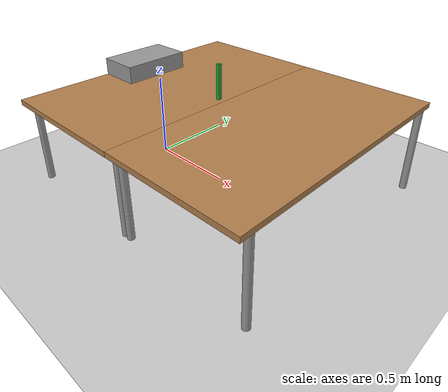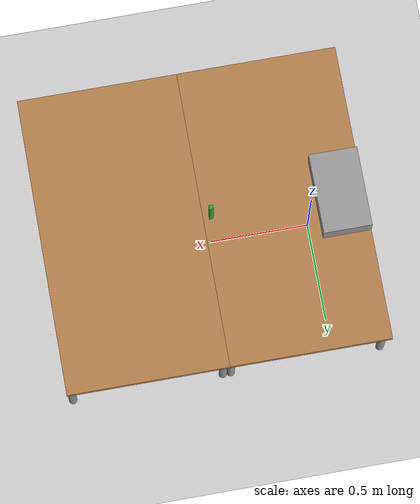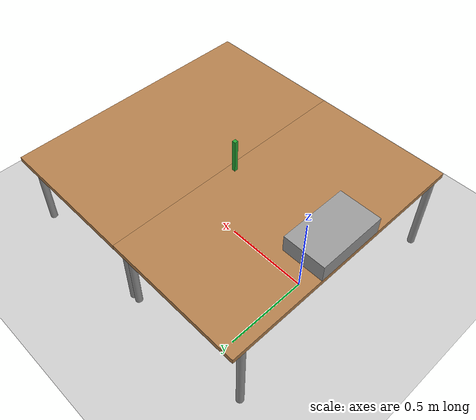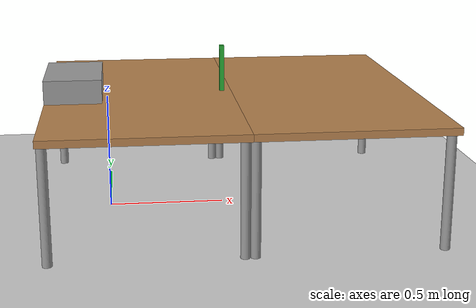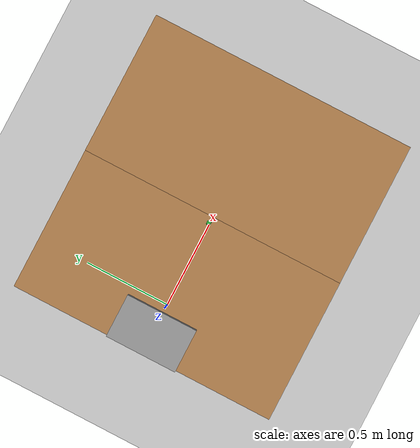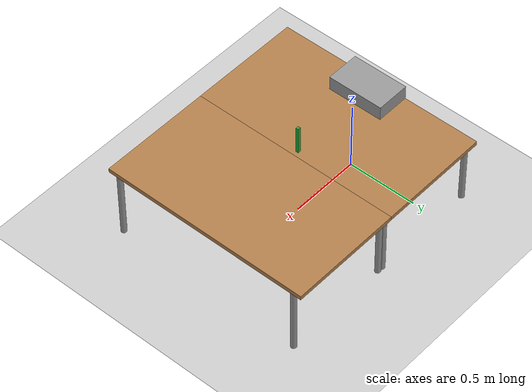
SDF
<sdf version="1.7">
 <world name="default">
  <light name="sun" type="directional">
   <pose>0 0 10 0 -0 0</pose>
   <diffuse>0.8 0.8 0.8 1</diffuse>
   <specular>0.2 0.2 0.2 1</specular>
   <attenuation>
    <range>1000</range>
    <constant>0.9</constant>
    <linear>0.01</linear>
    <quadratic>0.001</quadratic>
   </attenuation>
   <direction>-0.5 0.1 -0.9</direction>
   <spot><inner_angle>0</inner_angle><outer_angle>0</outer_angle><falloff>0</falloff></spot>
  </light>
  <gravity>0 0 -9.8</gravity>
  <magnetic_field>6e-06 2.3e-05 -4.2e-05</magnetic_field>
  <atmosphere type="adiabatic"/>
  <physics name="default_physics" default="0" type="ode">
   <max_step_size>0.001</max_step_size>
   <real_time_factor>1</real_time_factor>
   <real_time_update_rate>1000</real_time_update_rate>
  </physics>
  <scene><ambient>0.4 0.4 0.4 1</ambient><background>0.7 0.7 0.7 1</background><shadows>1</shadows></scene>
  <audio><device>default</device></audio>
  <spherical_coordinates>
   <surface_model>EARTH_WGS84</surface_model>
   <latitude_deg>0</latitude_deg>
   <longitude_deg>0</longitude_deg>
   <elevation>0</elevation>
   <heading_deg>0</heading_deg>
  </spherical_coordinates>
  <model name="ground_plane">
   <frame name="ground_plane::__model__" attached_to="ground_plane::link">
    <pose relative_to="__model__">0 0 0 0 -0 0</pose>
   </frame>
   <static>1</static>
   <link name="ground_plane::link">
    <collision name="collision">
     <geometry><plane><normal>0 0 1</normal><size>100 100</size></plane></geometry>
     <surface>
      <contact><collide_bitmask>65535</collide_bitmask></contact>
      <friction><ode><mu>100</mu><mu2>50</mu2></ode></friction>
     </surface>
    </collision>
    <visual name="visual">
     <cast_shadows>0</cast_shadows>
     <geometry><plane><normal>0 0 1</normal><size>100 100</size></plane></geometry>
     <material>
      <script><uri>file://media/materials/scripts/gazebo.material</uri><name>Gazebo/Grey</name></script>
     </material>
    </visual>
    <pose relative_to="ground_plane::__model__">0 0 0 0 -0 0</pose>
   </link>
  </model>
  <model name="table1">
   <frame name="table::__model__" attached_to="table::link">
    <pose relative_to="__model__">0 0 0 0 -0 0</pose>
   </frame>
   <static>1</static>
   <link name="table::link">
    <collision name="surface">
     <pose>0 0 0.5 0 -0 0</pose>
     <geometry><box><size>1.5 0.8 0.03</size></box></geometry>
     <surface><friction><ode><mu>0.6</mu><mu2>0.6</mu2></ode></friction></surface>
    </collision>
    <visual name="visual1">
     <pose>0 0 0.5 0 -0 0</pose>
     <geometry><box><size>1.5 0.8 0.03</size></box></geometry>
     <material>
      <script><uri>file://media/materials/scripts/gazebo.material</uri><name>Gazebo/Wood</name></script>
     </material>
    </visual>
    <collision name="front_left_leg">
     <pose>0.68 0.38 0.25 0 -0 0</pose>
     <geometry><cylinder><radius>0.02</radius><length>0.5</length></cylinder></geometry>
    </collision>
    <visual name="front_left_leg">
     <pose>0.68 0.38 0.25 0 -0 0</pose>
     <geometry><cylinder><radius>0.02</radius><length>0.5</length></cylinder></geometry>
     <material>
      <script><uri>file://media/materials/scripts/gazebo.material</uri><name>Gazebo/Grey</name></script>
     </material>
    </visual>
    <collision name="front_right_leg">
     <pose>0.68 -0.38 0.25 0 -0 0</pose>
     <geometry><cylinder><radius>0.02</radius><length>0.5</length></cylinder></geometry>
    </collision>
    <visual name="front_right_leg">
     <pose>0.68 -0.38 0.25 0 -0 0</pose>
     <geometry><cylinder><radius>0.02</radius><length>0.5</length></cylinder></geometry>
     <material>
      <script><uri>file://media/materials/scripts/gazebo.material</uri><name>Gazebo/Grey</name></script>
     </material>
    </visual>
    <collision name="back_right_leg">
     <pose>-0.68 -0.38 0.25 0 -0 0</pose>
     <geometry><cylinder><radius>0.02</radius><length>0.5</length></cylinder></geometry>
    </collision>
    <visual name="back_right_leg">
     <pose>-0.68 -0.38 0.25 0 -0 0</pose>
     <geometry><cylinder><radius>0.02</radius><length>0.5</length></cylinder></geometry>
     <material>
      <script><uri>file://media/materials/scripts/gazebo.material</uri><name>Gazebo/Grey</name></script>
     </material>
    </visual>
    <collision name="back_left_leg">
     <pose>-0.68 0.38 0.25 0 -0 0</pose>
     <geometry><cylinder><radius>0.02</radius><length>0.5</length></cylinder></geometry>
    </collision>
    <visual name="back_left_leg">
     <pose>-0.68 0.38 0.25 0 -0 0</pose>
     <geometry><cylinder><radius>0.02</radius><length>0.5</length></cylinder></geometry>
     <material>
      <script><uri>file://media/materials/scripts/gazebo.material</uri><name>Gazebo/Grey</name></script>
     </material>
    </visual>
    <pose relative_to="table::__model__">0 0 0 0 -0 0</pose>
   </link>
   <pose>0.14 0 0 0 -0 1.57</pose>
   <static>1</static>
  </model>
  <model name="table2">
   <frame name="table::__model__" attached_to="table::link">
    <pose relative_to="__model__">0 0 0 0 -0 0</pose>
   </frame>
   <static>1</static>
   <link name="table::link">
    <collision name="surface">
     <pose>0 0 0.5 0 -0 0</pose>
     <geometry><box><size>1.5 0.8 0.03</size></box></geometry>
     <surface><friction><ode><mu>0.6</mu><mu2>0.6</mu2></ode></friction></surface>
    </collision>
    <visual name="visual1">
     <pose>0 0 0.5 0 -0 0</pose>
     <geometry><box><size>1.5 0.8 0.03</size></box></geometry>
     <material>
      <script><uri>file://media/materials/scripts/gazebo.material</uri><name>Gazebo/Wood</name></script>
     </material>
    </visual>
    <collision name="front_left_leg">
     <pose>0.68 0.38 0.25 0 -0 0</pose>
     <geometry><cylinder><radius>0.02</radius><length>0.5</length></cylinder></geometry>
    </collision>
    <visual name="front_left_leg">
     <pose>0.68 0.38 0.25 0 -0 0</pose>
     <geometry><cylinder><radius>0.02</radius><length>0.5</length></cylinder></geometry>
     <material>
      <script><uri>file://media/materials/scripts/gazebo.material</uri><name>Gazebo/Grey</name></script>
     </material>
    </visual>
    <collision name="front_right_leg">
     <pose>0.68 -0.38 0.25 0 -0 0</pose>
     <geometry><cylinder><radius>0.02</radius><length>0.5</length></cylinder></geometry>
    </collision>
    <visual name="front_right_leg">
     <pose>0.68 -0.38 0.25 0 -0 0</pose>
     <geometry><cylinder><radius>0.02</radius><length>0.5</length></cylinder></geometry>
     <material>
      <script><uri>file://media/materials/scripts/gazebo.material</uri><name>Gazebo/Grey</name></script>
     </material>
    </visual>
    <collision name="back_right_leg">
     <pose>-0.68 -0.38 0.25 0 -0 0</pose>
     <geometry><cylinder><radius>0.02</radius><length>0.5</length></cylinder></geometry>
    </collision>
    <visual name="back_right_leg">
     <pose>-0.68 -0.38 0.25 0 -0 0</pose>
     <geometry><cylinder><radius>0.02</radius><length>0.5</length></cylinder></geometry>
     <material>
      <script><uri>file://media/materials/scripts/gazebo.material</uri><name>Gazebo/Grey</name></script>
     </material>
    </visual>
    <collision name="back_left_leg">
     <pose>-0.68 0.38 0.25 0 -0 0</pose>
     <geometry><cylinder><radius>0.02</radius><length>0.5</length></cylinder></geometry>
    </collision>
    <visual name="back_left_leg">
     <pose>-0.68 0.38 0.25 0 -0 0</pose>
     <geometry><cylinder><radius>0.02</radius><length>0.5</length></cylinder></geometry>
     <material>
      <script><uri>file://media/materials/scripts/gazebo.material</uri><name>Gazebo/Grey</name></script>
     </material>
    </visual>
    <pose relative_to="table::__model__">0 0 0 0 -0 0</pose>
   </link>
   <pose>0.94 0 0 0 -0 1.57</pose>
   <static>1</static>
  </model>
  <model name="unit_box">
   <frame name="unit_box::__model__" attached_to="unit_box::link">
    <pose relative_to="__model__">0 0 0 0 -0 0</pose>
   </frame>
   <static>1</static>
   <link name="unit_box::link">
    <inertial>
     <mass>1</mass>
     <inertia>
      <ixx>0.166667</ixx>
      <ixy>0</ixy>
      <ixz>0</ixz>
      <iyy>0.166667</iyy>
      <iyz>0</iyz>
      <izz>0.166667</izz>
     </inertia>
    </inertial>
    <visual name="visual">
     <geometry><box><size>0.24 0.4 0.1</size></box></geometry>
     <material>
      <script><name>Gazebo/Grey</name><uri>file://media/materials/scripts/gazebo.material</uri></script>
     </material>
    </visual>
    <collision name="visual"><geometry><box><size>0.24 0.4 0.1</size></box></geometry></collision>
    <pose relative_to="unit_box::__model__">0 0 0 0 -0 0</pose>
   </link>
   <pose>-0.14 0 0.565 0 -0 0</pose>
   <static>1</static>
  </model>
  <model name="Object">
   <link name="link_0">
    <inertial>
     <mass>0.1</mass>
     <inertia>
      <ixx>0.0166667</ixx>
      <ixy>0</ixy>
      <ixz>0</ixz>
      <iyy>0.0166667</iyy>
      <iyz>0</iyz>
      <izz>0.0166667</izz>
     </inertia>
    </inertial>
    <visual name="visual">
     <geometry><box><size>0.02 0.02 0.2</size></box></geometry>
     <material>
      <lighting>1</lighting>
      <script><uri>file://media/materials/scripts/gazebo.material</uri><name>Gazebo/Green</name></script>
      <shader type="pixel"><normal_map>__default__</normal_map></shader>
      <ambient>0.3 0.3 0.3 1</ambient>
      <diffuse>0.7 0.7 0.7 1</diffuse>
      <specular>0.01 0.01 0.01 1</specular>
      <emissive>0 0 0 1</emissive>
     </material>
    </visual>
    <collision name="collision">
     <geometry><box><size>0.02 0.02 0.2</size></box></geometry>
     <surface>
      <friction>
       <ode><mu>1</mu><mu2>1</mu2><fdir1>0 0 0</fdir1><slip1>0</slip1><slip2>0</slip2></ode>
       <torsional>
        <coefficient>1</coefficient>
        <patch_radius>0</patch_radius>
        <surface_radius>0</surface_radius>
        <use_patch_radius>1</use_patch_radius>
        <ode><slip>0</slip></ode>
       </torsional>
      </friction>
      <bounce><restitution_coefficient>0</restitution_coefficient><threshold>1e+06</threshold></bounce>
      <contact>
       <collide_without_contact>0</collide_without_contact>
       <collide_without_contact_bitmask>1</collide_without_contact_bitmask>
       <collide_bitmask>1</collide_bitmask>
       <ode>
        <soft_cfm>0</soft_cfm>
        <soft_erp>0.2</soft_erp>
        <kp>1e+13</kp>
        <kd>1</kd>
        <max_vel>0.01</max_vel>
        <min_depth>0</min_depth>
       </ode>
       <bullet>
        <split_impulse>1</split_impulse>
        <split_impulse_penetration_threshold>-0.01</split_impulse_penetration_threshold>
        <soft_cfm>0</soft_cfm>
        <soft_erp>0.2</soft_erp>
        <kp>1e+13</kp>
        <kd>1</kd>
       </bullet>
      </contact>
     </surface>
    </collision>
   </link>
   <static>0</static>
   <pose>0.499956 0 0.614995 -2e-06 -0.000439 -2.4e-05</pose>
  </model>
 </world>
</sdf>
